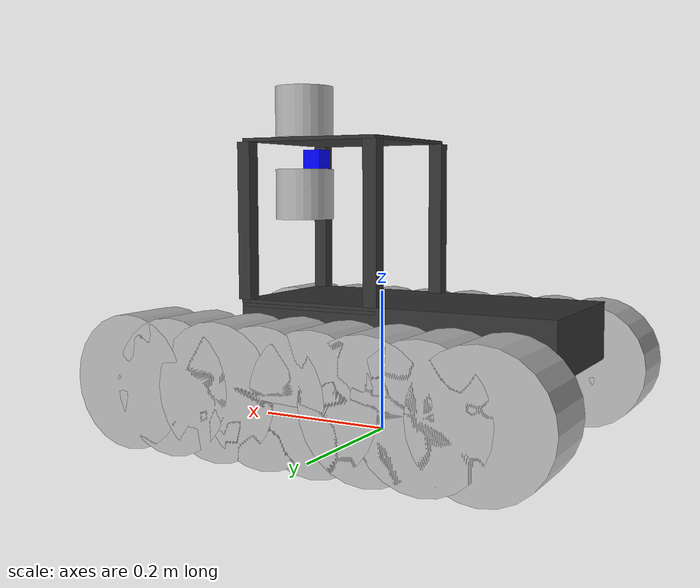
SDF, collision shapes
<?xml version="1.0" ?>

<!-- TODO: add prefix to the sensors and the cmd_vel (in Raposa) -->
<sdf version="1.6">
  <plugin
      filename="ignition-gazebo-sensors-system"
      name="ignition::gazebo::systems::Sensors">
      <render_engine>ogre2</render_engine>
    </plugin>
  <model name="nix">
    <pose frame=''>0 0 0 0 0 0</pose>

    <include>
      <uri>raposaNG</uri>
      <pose frame=''> 0 0 0.07 0 0 0 </pose>
    </include>

    <include>
      <uri>nix_tower</uri>
      <name>nix_tower</name>
      <pose frame=''> 0.06 0 0.18 0 0 0 </pose>
    </include>
    <joint name="tower_joint" type="revolute">
      <child>nix_tower::base_link</child>
      <parent>raposaNG::base_link</parent>

      <pose>0.06 0 0.18 0 0 0</pose>

      <axis>
        <limit>
          <lower>-0.02</lower>
          <upper>0.02</upper>
        </limit>
        <xyz>0 0 1</xyz>
        <dynamics>
          <spring_reference>0</spring_reference>
          <spring_stiffness>0</spring_stiffness>
          <damping>0.3</damping>
          <friction>2</friction>
        </dynamics>
      </axis>

    </joint>

    <!-- Ouster Configuration-->
    <include>
      <uri>velodyne_hdl32</uri>
      <pose frame=''> 0.13 0 0.42 0 0 0 </pose>
    </include>
    <joint name="velodyne_joint" type="fixed">
      <child>velodyne::top</child>
      <parent>nix_tower::plate</parent>

      <pose>0.15 0 0.42 0 0 0</pose>
    </joint>

    <!-- Radar Config -->
    <include>
      <uri>hrw_radar</uri>
      <pose frame=''> 0.13 0 0.3 0 0 0 </pose>
    </include>
    <joint name="radar_joint" type="fixed">
      <child>radar::top</child>
      <parent>nix_tower::plate</parent>

      <pose>0.15 0 0.3 0 0 0</pose>
    </joint>

    <include>
      <uri>wide_lens_camera</uri>
      <pose frame=''> 0.16 -0.08 0.39 0 0 0 </pose>
    </include>
    <joint name="wide_lens_camera_joint" type="fixed">
      <child>wide_lens_camera::base_link</child>
      <parent>nix_tower::plate</parent>
      <pose>0.16 -0.08 0.39 0 0 0</pose>
    </joint>

  </model>
</sdf>

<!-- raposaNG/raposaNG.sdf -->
<sdf version="1.6">
<odom_publish_frequency>1</odom_publish_frequency>
    <topic>cmd_vel</topic>
    <model name="raposaNG">
      <pose frame=''>0 2 0.071917 0 0 0</pose>
      <link name='base_link'>
          <pose frame=''>0 0 0 0 -0 0</pose>
          <inertial>
              <pose frame=''>-0.062 0 0.03 1.5708 -0 0</pose>
              <mass>13.14</mass>
              <inertia>
                  <ixx>0.10019</ixx>
                  <ixy>0</ixy>
                  <ixz>0</ixz>
                  <iyy>0.345043</iyy>
                  <iyz>0</iyz>
                  <izz>0.302044</izz>
              </inertia>
          </inertial>
          <collision name='base_link_collision'>
              <pose frame=''>-0.062 0 0.08 0 -0 0</pose>
              <geometry>
                  <box>
                      <size>0.46017 0.2093 0.08</size>
                  </box>
              </geometry>
          </collision>
          <visual name='base_link_visual'>
              <pose frame=''>-0.062 0 0.08 0 -0 0</pose>
              <geometry>
                  <box>
                      <size>0.46017 0.29093 0.08</size>
                  </box>
              </geometry>
              <material>
                <ambient>0.2 0.2 0.2 1</ambient>
                <diffuse>0.2 0.2 0.2 1</diffuse>
                <specular>0.1 0.1 0.1 1</specular>
              </material>
          </visual>
          <self_collide>0</self_collide>
          <gravity>1</gravity>
          <kinematic>0</kinematic>

          <sensor name="imu_sensor" type="imu">
            <always_on>1</always_on>
            <update_rate>1000</update_rate>
          </sensor>
      </link>

      <link name='left_track'>
          <pose frame=''>0 0.1985 0 0 -0 0</pose>
          <inertial>
              <mass>2.06</mass>
              <inertia>
                  <ixx>0.002731</ixx>
                  <ixy>0</ixy>
                  <ixz>0</ixz>
                  <iyy>0.032554</iyy>
                  <iyz>0</iyz>
                  <izz>0.031391</izz>
              </inertia>
          </inertial>
          <collision name='left_track_collision'>
              <pose frame=''>0 0 0.01855 1.5707963267948966  -0 1.5707963267948966</pose>
              <geometry>
                  <box>
                      <size>0.009728 0.018094 0.05</size>
                  </box>
              </geometry>
          </collision>
      </link>
      <joint name='left_track_j' type='fixed'>
          <child>left_track</child>
          <parent>base_link</parent>
      </joint>
      <link name='left_track_wheel1'>
          <pose frame=''>0.25 0.1985 0.01855 0 -0 0</pose>
          <inertial>
              <mass>0.5</mass>
              <inertia>
                  <ixx>0.001</ixx>
                  <ixy>0</ixy>
                  <ixz>0</ixz>
                  <iyy>0.001</iyy>
                  <iyz>0</iyz>
                  <izz>0.001</izz>
              </inertia>
          </inertial>
          <collision name='left_track_wheel1_collision'>
              <pose frame=''>0 0 0 1.5707963267948966 -0 0</pose>
              <geometry>
                  <cylinder>
                      <length>0.09728</length>
                      <radius>0.09047</radius>
                  </cylinder>
              </geometry>
              <surface>
                  <friction>
                      <ode>
                          <mu>0.5</mu>
                          <mu2>3.19858</mu2>
                          <fdir1>0 0 1</fdir1>
                          <slip1>0</slip1>
                          <slip2>0</slip2>
                      </ode>
                  </friction>
              </surface>
          </collision>
          <visual name='left_track_wheel1_visual'>
              <pose frame=''>0 0 0 1.5707963267948966 -0 0</pose>
              <geometry>
                  <cylinder>
                      <length>0.09728</length>
                      <radius>0.09047</radius>
                  </cylinder>
              </geometry>
          </visual>
      </link>
      <joint name='left_track_wheel1_j' type='revolute'>
          <child>left_track_wheel1</child>
          <parent>left_track</parent>
          <axis>
              <xyz>0 1 0</xyz>
              <limit>
                  <lower>-1e+16</lower>
                  <upper>1e+16</upper>
              </limit>
          </axis>
      </joint>
      <link name='left_track_wheel2'>
          <pose frame=''>0.1786 0.1985 0.01855 0 -0 0</pose>
          <inertial>
              <mass>0.5</mass>
              <inertia>
                  <ixx>0.001</ixx>
                  <ixy>0</ixy>
                  <ixz>0</ixz>
                  <iyy>0.001</iyy>
                  <iyz>0</iyz>
                  <izz>0.001</izz>
              </inertia>
          </inertial>
          <collision name='left_track_wheel2_collision'>
              <pose frame=''>0 0 0 1.5707963267948966 -0 0</pose>
              <geometry>
                  <cylinder>
                      <length>0.09728</length>
                      <radius>0.09047</radius>
                  </cylinder>
              </geometry>
              <surface>
                  <friction>
                      <ode>
                          <mu>0.5</mu>
                          <mu2>3.19858</mu2>
                          <fdir1>0 0 1</fdir1>
                          <slip1>0</slip1>
                          <slip2>0</slip2>
                      </ode>
                  </friction>
              </surface>
          </collision>
          <visual name='left_track_wheel2_visual'>
              <pose frame=''>0 0 0 1.5707963267948966 -0 0</pose>
              <geometry>
                  <cylinder>
                      <length>0.09728</length>
                      <radius>0.09047</radius>
                  </cylinder>
              </geometry>
          </visual>
      </link>
      <joint name='left_track_wheel2_j' type='revolute'>
          <child>left_track_wheel2</child>
          <parent>left_track</parent>
          <axis>
              <xyz>0 1 0</xyz>
              <limit>
                  <lower>-1e+16</lower>
                  <upper>1e+16</upper>
              </limit>
          </axis>
      </joint>
      <link name='left_track_wheel3'>
          <pose frame=''>0.1072 0.1985 0.01855 0 -0 0</pose>
          <inertial>
              <mass>0.5</mass>
              <inertia>
                  <ixx>0.001</ixx>
                  <ixy>0</ixy>
                  <ixz>0</ixz>
                  <iyy>0.001</iyy>
                  <iyz>0</iyz>
                  <izz>0.001</izz>
              </inertia>
          </inertial>
          <collision name='left_track_wheel3_collision'>
              <pose frame=''>0 0 0 1.5707963267948966 -0 0</pose>
              <geometry>
                  <cylinder>
                      <length>0.09728</length>
                      <radius>0.09047</radius>
                  </cylinder>
              </geometry>
              <surface>
                  <friction>
                      <ode>
                          <mu>0.5</mu>
                          <mu2>3.19858</mu2>
                          <fdir1>0 0 1</fdir1>
                          <slip1>0</slip1>
                          <slip2>0</slip2>
                      </ode>
                  </friction>
              </surface>
          </collision>
          <visual name='left_track_wheel3_visual'>
              <pose frame=''>0 0 0 1.5707963267948966 -0 0</pose>
              <geometry>
                  <cylinder>
                      <length>0.09728</length>
                      <radius>0.09047</radius>
                  </cylinder>
              </geometry>
          </visual>
      </link>
      <joint name='left_track_wheel3_j' type='revolute'>
          <child>left_track_wheel3</child>
          <parent>left_track</parent>
          <axis>
              <xyz>0 1 0</xyz>
              <limit>
                  <lower>-1e+16</lower>
                  <upper>1e+16</upper>
              </limit>
          </axis>
      </joint>
      <link name='left_track_wheel4'>
          <pose frame=''>-0.25 0.1985 0.01855 0 -0 0</pose>
          <inertial>
              <mass>0.5</mass>
              <inertia>
                  <ixx>0.001</ixx>
                  <ixy>0</ixy>
                  <ixz>0</ixz>
                  <iyy>0.001</iyy>
                  <iyz>0</iyz>
                  <izz>0.001</izz>
              </inertia>
          </inertial>
          <collision name='left_track_wheel4_collision'>
              <pose frame=''>0 0 0 1.5707963267948966 -0 0</pose>
              <geometry>
                  <cylinder>
                      <length>0.09728</length>
                      <radius>0.09047</radius>
                  </cylinder>
              </geometry>
              <surface>
                  <friction>
                      <ode>
                          <mu>0.5</mu>
                          <mu2>3.19858</mu2>
                          <fdir1>0 0 1</fdir1>
                          <slip1>0</slip1>
                          <slip2>0</slip2>
                      </ode>
                  </friction>
              </surface>
          </collision>
          <visual name='left_track_wheel4_visual'>
              <pose frame=''>0 0 0 1.5707963267948966 -0 0</pose>
              <geometry>
                  <cylinder>
                      <length>0.09728</length>
                      <radius>0.09047</radius>
                  </cylinder>
              </geometry>
          </visual>
      </link>
      <joint name='left_track_wheel4_j' type='revolute'>
          <child>left_track_wheel4</child>
          <parent>left_track</parent>
          <axis>
              <xyz>0 1 0</xyz>
              <limit>
                  <lower>-1e+16</lower>
                  <upper>1e+16</upper>
              </limit>
          </axis>
      </joint>
      <link name='left_track_wheel5'>
          <pose frame=''>-0.0358 0.1985 0.01855 0 -0 0</pose>
          <inertial>
              <mass>0.5</mass>
              <inertia>
                  <ixx>0.001</ixx>
                  <ixy>0</ixy>
                  <ixz>0</ixz>
                  <iyy>0.001</iyy>
                  <iyz>0</iyz>
                  <izz>0.001</izz>
              </inertia>
          </inertial>
          <collision name='left_track_wheel5_collision'>
              <pose frame=''>0 0 0 1.5707963267948966 -0 0</pose>
              <geometry>
                  <cylinder>
                      <length>0.09728</length>
                      <radius>0.09047</radius>
                  </cylinder>
              </geometry>
              <surface>
                  <friction>
                      <ode>
                          <mu>0.5</mu>
                          <mu2>3.19858</mu2>
                          <fdir1>0 0 1</fdir1>
                          <slip1>0</slip1>
                          <slip2>0</slip2>
                      </ode>
                  </friction>
              </surface>
          </collision>
          <visual name='left_track_wheel5_visual'>
              <pose frame=''>0 0 0 1.5707963267948966 -0 0</pose>
              <geometry>
                  <cylinder>
                      <length>0.09728</length>
                      <radius>0.09047</radius>
                  </cylinder>
              </geometry>
          </visual>
      </link>
      <joint name='left_track_wheel5_j' type='revolute'>
          <child>left_track_wheel5</child>
          <parent>left_track</parent>
          <axis>
              <xyz>0 1 0</xyz>
              <limit>
                  <lower>-1e+16</lower>
                  <upper>1e+16</upper>
              </limit>
          </axis>
      </joint>
      <link name='left_track_wheel6'>
          <pose frame=''>-0.1072 0.1985 0.01855 0 -0 0</pose>
          <inertial>
              <mass>0.5</mass>
              <inertia>
                  <ixx>0.001</ixx>
                  <ixy>0</ixy>
                  <ixz>0</ixz>
                  <iyy>0.001</iyy>
                  <iyz>0</iyz>
                  <izz>0.001</izz>
              </inertia>
          </inertial>
          <collision name='left_track_wheel6_collision'>
              <pose frame=''>0 0 0 1.5707963267948966 -0 0</pose>
              <geometry>
                  <cylinder>
                      <length>0.09728</length>
                      <radius>0.09047</radius>
                  </cylinder>
              </geometry>
              <surface>
                  <friction>
                      <ode>
                          <mu>0.5</mu>
                          <mu2>3.19858</mu2>
                          <fdir1>0 0 1</fdir1>
                          <slip1>0</slip1>
                          <slip2>0</slip2>
                      </ode>
                  </friction>
              </surface>
          </collision>
          <visual name='left_track_wheel6_visual'>
              <pose frame=''>0 0 0 1.5707963267948966 -0 0</pose>
              <geometry>
                  <cylinder>
                      <length>0.09728</length>
                      <radius>0.09047</radius>
                  </cylinder>
              </geometry>
          </visual>
          <gravity>1</gravity>
          <velocity_decay/>
          <kinematic>0</kinematic>
      </link>
      <joint name='left_track_wheel6_j' type='revolute'>
          <child>left_track_wheel6</child>
          <parent>left_track</parent>
          <axis>
              <xyz>0 1 0</xyz>
              <limit>
                  <lower>-1e+16</lower>
                  <upper>1e+16</upper>
              </limit>
          </axis>
      </joint>
      <link name='left_track_wheel7'>
          <pose frame=''>-0.1786 0.1985 0.01855 0 -0 0</pose>
          <inertial>
              <mass>0.5</mass>
              <inertia>
                  <ixx>0.001</ixx>
                  <ixy>0</ixy>
                  <ixz>0</ixz>
                  <iyy>0.001</iyy>
                  <iyz>0</iyz>
                  <izz>0.001</izz>
              </inertia>
          </inertial>
          <collision name='left_track_wheel7_collision'>
              <pose frame=''>0 0 0 1.5707963267948966 -0 0</pose>
              <geometry>
                  <cylinder>
                      <length>0.09728</length>
                      <radius>0.09047</radius>
                  </cylinder>
              </geometry>
              <surface>
                  <friction>
                      <ode>
                          <mu>0.5</mu>
                          <mu2>3.19858</mu2>
                          <fdir1>0 0 1</fdir1>
                          <slip1>0</slip1>
                          <slip2>0</slip2>
                      </ode>
                  </friction>
              </surface>
          </collision>
          <visual name='left_track_wheel7_visual'>
              <pose frame=''>0 0 0 1.5707963267948966 -0 0</pose>
              <geometry>
                  <cylinder>
                      <length>0.09728</length>
                      <radius>0.09047</radius>
                  </cylinder>
              </geometry>
          </visual>
      </link>
      <joint name='left_track_wheel7_j' type='revolute'>
          <child>left_track_wheel7</child>
          <parent>left_track</parent>
          <axis>
              <xyz>0 1 0</xyz>
              <limit>
                  <lower>-1e+16</lower>
                  <upper>1e+16</upper>
              </limit>
          </axis>
      </joint>
      <link name='left_track_wheel8'>
          <pose frame=''>0.0358 0.1985 0.01855 0 -0 0</pose>
          <inertial>
              <mass>0.5</mass>
              <inertia>
                  <ixx>0.001</ixx>
                  <ixy>0</ixy>
                  <ixz>0</ixz>
                  <iyy>0.001</iyy>
                  <iyz>0</iyz>
                  <izz>0.001</izz>
              </inertia>
          </inertial>
          <collision name='left_track_wheel8_collision'>
              <pose frame=''>0 0 0 1.5707963267948966 -0 0</pose>
              <geometry>
                  <cylinder>
                      <length>0.09728</length>
                      <radius>0.09047</radius>
                  </cylinder>
              </geometry>
              <surface>
                  <friction>
                      <ode>
                          <mu>0.5</mu>
                          <mu2>3.19858</mu2>
                          <fdir1>0 0 1</fdir1>
                          <slip1>0</slip1>
                          <slip2>0</slip2>
                      </ode>
                  </friction>
              </surface>
          </collision>
          <visual name='left_track_wheel8_visual'>
              <pose frame=''>0 0 0 1.5707963267948966 -0 0</pose>
              <geometry>
                  <cylinder>
                      <length>0.09728</length>
                      <radius>0.09047</radius>
                  </cylinder>
              </geometry>
          </visual>
      </link>
      <joint name='left_track_wheel8_j' type='revolute'>
          <child>left_track_wheel8</child>
          <parent>left_track</parent>
          <axis>
              <xyz>0 1 0</xyz>
              <limit>
                  <lower>-1e+16</lower>
                  <upper>1e+16</upper>
              </limit>
          </axis>
      </joint>

      <link name='right_track'>
          <pose frame=''>0 -0.1985 0 0 -0 0</pose>
          <inertial>
              <mass>2.06</mass>
              <inertia>
                  <ixx>0.002731</ixx>
                  <ixy>0</ixy>
                  <ixz>0</ixz>
                  <iyy>0.032554</iyy>
                  <iyz>0</iyz>
                  <izz>0.031391</izz>
              </inertia>
          </inertial>
          <collision name='right_track_collision'>
              <pose frame=''>0 0 0.01855 1.5707963267948966  -0 1.5707963267948966</pose>
              <geometry>
                  <box>
                      <size>0.009728 0.018094 0.05</size>
                  </box>
              </geometry>
          </collision>
      </link>
      <joint name='right_track_j' type='fixed'>
          <child>right_track</child>
          <parent>base_link</parent>
      </joint>

      <link name='right_track_wheel1'>
          <pose frame=''>0.25 -0.1985 0.01855 0 -0 0</pose>
          <inertial>
              <mass>0.5</mass>
              <inertia>
                  <ixx>0.001</ixx>
                  <ixy>0</ixy>
                  <ixz>0</ixz>
                  <iyy>0.001</iyy>
                  <iyz>0</iyz>
                  <izz>0.001</izz>
              </inertia>
          </inertial>
          <collision name='right_track_wheel1_collision'>
              <pose frame=''>0 0 0 1.5707963267948966 -0 0</pose>
              <geometry>
                  <cylinder>
                      <length>0.09728</length>
                      <radius>0.09047</radius>
                  </cylinder>
              </geometry>
              <surface>
                  <friction>
                      <ode>
                          <mu>0.5</mu>
                          <mu2>3.19858</mu2>
                          <fdir1>0 0 1</fdir1>
                          <slip1>0</slip1>
                          <slip2>0</slip2>
                      </ode>
                  </friction>
              </surface>
          </collision>
          <visual name='right_track_wheel1_visual'>
              <pose frame=''>0 0 0 1.5707963267948966 -0 0</pose>
              <geometry>
                  <cylinder>
                      <length>0.09728</length>
                      <radius>0.09047</radius>
                  </cylinder>
              </geometry>
          </visual>
      </link>
      <joint name='right_track_wheel1_j' type='revolute'>
          <child>right_track_wheel1</child>
          <parent>right_track</parent>
          <axis>
              <xyz>0 1 0</xyz>
              <limit>
                  <lower>-1e+16</lower>
                  <upper>1e+16</upper>
              </limit>
          </axis>
      </joint>
      <link name='right_track_wheel2'>
          <pose frame=''>0.1786 -0.1985 0.01855 0 -0 0</pose>
          <inertial>
              <mass>0.5</mass>
              <inertia>
                  <ixx>0.001</ixx>
                  <ixy>0</ixy>
                  <ixz>0</ixz>
                  <iyy>0.001</iyy>
                  <iyz>0</iyz>
                  <izz>0.001</izz>
              </inertia>
          </inertial>
          <collision name='right_track_wheel2_collision'>
              <pose frame=''>0 0 0 1.5707963267948966 -0 0</pose>
              <geometry>
                  <cylinder>
                      <length>0.09728</length>
                      <radius>0.09047</radius>
                  </cylinder>
              </geometry>
              <surface>
                  <friction>
                      <ode>
                          <mu>0.5</mu>
                          <mu2>3.19858</mu2>
                          <fdir1>0 0 1</fdir1>
                          <slip1>0</slip1>
                          <slip2>0</slip2>
                      </ode>
                  </friction>
              </surface>
          </collision>
          <visual name='right_track_wheel2_visual'>
              <pose frame=''>0 0 0 1.5707963267948966 -0 0</pose>
              <geometry>
                  <cylinder>
                      <length>0.09728</length>
                      <radius>0.09047</radius>
                  </cylinder>
              </geometry>
          </visual>
      </link>
      <joint name='right_track_wheel2_j' type='revolute'>
          <child>right_track_wheel2</child>
          <parent>right_track</parent>
          <axis>
              <xyz>0 1 0</xyz>
              <limit>
                  <lower>-1e+16</lower>
                  <upper>1e+16</upper>
              </limit>
          </axis>
      </joint>
      <link name='right_track_wheel3'>
          <pose frame=''>0.1072 -0.1985 0.01855 0 -0 0</pose>
          <inertial>
              <mass>0.5</mass>
              <inertia>
                  <ixx>0.001</ixx>
                  <ixy>0</ixy>
                  <ixz>0</ixz>
                  <iyy>0.001</iyy>
                  <iyz>0</iyz>
                  <izz>0.001</izz>
              </inertia>
          </inertial>
          <collision name='right_track_wheel3_collision'>
              <pose frame=''>0 0 0 1.5707963267948966 -0 0</pose>
              <geometry>
                  <cylinder>
                      <length>0.09728</length>
                      <radius>0.09047</radius>
                  </cylinder>
              </geometry>
              <surface>
                  <friction>
                      <ode>
                          <mu>0.5</mu>
                          <mu2>3.19858</mu2>
                          <fdir1>0 0 1</fdir1>
                          <slip1>0</slip1>
                          <slip2>0</slip2>
                      </ode>
                  </friction>
              </surface>
          </collision>
          <visual name='right_track_wheel3_visual'>
              <pose frame=''>0 0 0 1.5707963267948966 -0 0</pose>
              <geometry>
                  <cylinder>
                      <length>0.09728</length>
                      <radius>0.09047</radius>
                  </cylinder>
              </geometry>
          </visual>
      </link>
      <joint name='right_track_wheel3_j' type='revolute'>
          <child>right_track_wheel3</child>
          <parent>right_track</parent>
          <axis>
              <xyz>0 1 0</xyz>
              <limit>
                  <lower>-1e+16</lower>
                  <upper>1e+16</upper>
              </limit>
          </axis>
      </joint>
      <link name='right_track_wheel4'>
          <pose frame=''>-0.25 -0.1985 0.01855 0 -0 0</pose>
          <inertial>
              <mass>0.5</mass>
              <inertia>
                  <ixx>0.001</ixx>
                  <ixy>0</ixy>
                  <ixz>0</ixz>
                  <iyy>0.001</iyy>
                  <iyz>0</iyz>
                  <izz>0.001</izz>
              </inertia>
          </inertial>
          <collision name='right_track_wheel4_collision'>
              <pose frame=''>0 0 0 1.5707963267948966 -0 0</pose>
              <geometry>
                  <cylinder>
                      <length>0.09728</length>
                      <radius>0.09047</radius>
                  </cylinder>
              </geometry>
              <surface>
                  <friction>
                      <ode>
                          <mu>0.5</mu>
                          <mu2>3.19858</mu2>
                          <fdir1>0 0 1</fdir1>
                          <slip1>0</slip1>
                          <slip2>0</slip2>
                      </ode>
                  </friction>
              </surface>
          </collision>
          <visual name='right_track_wheel4_visual'>
              <pose frame=''>0 0 0 1.5707963267948966 -0 0</pose>
              <geometry>
                  <cylinder>
                      <length>0.09728</length>
                      <radius>0.09047</radius>
                  </cylinder>
              </geometry>
          </visual>
      </link>
      <joint name='right_track_wheel4_j' type='revolute'>
          <child>right_track_wheel4</child>
          <parent>right_track</parent>
          <axis>
              <xyz>0 1 0</xyz>
              <limit>
                  <lower>-1e+16</lower>
                  <upper>1e+16</upper>
              </limit>
          </axis>
      </joint>
      <link name='right_track_wheel5'>
          <pose frame=''>-0.0358 -0.1985 0.01855 0 -0 0</pose>
          <inertial>
              <mass>0.5</mass>
              <inertia>
                  <ixx>0.001</ixx>
                  <ixy>0</ixy>
                  <ixz>0</ixz>
                  <iyy>0.001</iyy>
                  <iyz>0</iyz>
                  <izz>0.001</izz>
              </inertia>
          </inertial>
          <collision name='right_track_wheel5_collision'>
              <pose frame=''>0 0 0 1.5707963267948966 -0 0</pose>
              <geometry>
                  <cylinder>
                      <length>0.09728</length>
                      <radius>0.09047</radius>
                  </cylinder>
              </geometry>
              <surface>
                  <friction>
                      <ode>
                          <mu>0.5</mu>
                          <mu2>3.19858</mu2>
                          <fdir1>0 0 1</fdir1>
                          <slip1>0</slip1>
                          <slip2>0</slip2>
                      </ode>
                  </friction>
              </surface>
          </collision>
          <visual name='right_track_wheel5_visual'>
              <pose frame=''>0 0 0 1.5707963267948966 -0 0</pose>
              <geometry>
                  <cylinder>
                      <length>0.09728</length>
                      <radius>0.09047</radius>
                  </cylinder>
              </geometry>
          </visual>
      </link>
      <joint name='right_track_wheel5_j' type='revolute'>
          <child>right_track_wheel5</child>
          <parent>right_track</parent>
          <axis>
              <xyz>0 1 0</xyz>
              <limit>
                  <lower>-1e+16</lower>
                  <upper>1e+16</upper>
              </limit>
          </axis>
      </joint>
      <link name='right_track_wheel6'>
          <pose frame=''>-0.1072 -0.1985 0.01855 0 -0 0</pose>
          <inertial>
              <mass>0.5</mass>
              <inertia>
                  <ixx>0.001</ixx>
                  <ixy>0</ixy>
                  <ixz>0</ixz>
                  <iyy>0.001</iyy>
                  <iyz>0</iyz>
                  <izz>0.001</izz>
              </inertia>
          </inertial>
          <collision name='right_track_wheel6_collision'>
              <pose frame=''>0 0 0 1.5707963267948966 -0 0</pose>
              <geometry>
                  <cylinder>
                      <length>0.09728</length>
                      <radius>0.09047</radius>
                  </cylinder>
              </geometry>
              <surface>
                  <friction>
                      <ode>
                          <mu>0.5</mu>
                          <mu2>3.19858</mu2>
                          <fdir1>0 0 1</fdir1>
                          <slip1>0</slip1>
                          <slip2>0</slip2>
                      </ode>
                  </friction>
              </surface>
          </collision>
          <visual name='right_track_wheel6_visual'>
              <pose frame=''>0 0 0 1.5707963267948966 -0 0</pose>
              <geometry>
                  <cylinder>
                      <length>0.09728</length>
                      <radius>0.09047</radius>
                  </cylinder>
              </geometry>
          </visual>
      </link>
      <joint name='right_track_wheel6_j' type='revolute'>
          <child>right_track_wheel6</child>
          <parent>right_track</parent>
          <axis>
              <xyz>0 1 0</xyz>
              <limit>
                  <lower>-1e+16</lower>
                  <upper>1e+16</upper>
              </limit>
          </axis>
      </joint>
      <link name='right_track_wheel7'>
          <pose frame=''>-0.1786 -0.1985 0.01855 0 -0 0</pose>
          <inertial>
              <mass>0.5</mass>
              <inertia>
                  <ixx>0.001</ixx>
                  <ixy>0</ixy>
                  <ixz>0</ixz>
                  <iyy>0.001</iyy>
                  <iyz>0</iyz>
                  <izz>0.001</izz>
              </inertia>
          </inertial>
          <collision name='right_track_wheel7_collision'>
              <pose frame=''>0 0 0 1.5707963267948966 -0 0</pose>
              <geometry>
                  <cylinder>
                      <length>0.09728</length>
                      <radius>0.09047</radius>
                  </cylinder>
              </geometry>
              <surface>
                  <friction>
                      <ode>
                          <mu>0.5</mu>
                          <mu2>3.19858</mu2>
                          <fdir1>0 0 1</fdir1>
                          <slip1>0</slip1>
                          <slip2>0</slip2>
                      </ode>
                  </friction>
              </surface>
          </collision>
          <visual name='right_track_wheel7_visual'>
              <pose frame=''>0 0 0 1.5707963267948966 -0 0</pose>
              <geometry>
                  <cylinder>
                      <length>0.09728</length>
                      <radius>0.09047</radius>
                  </cylinder>
              </geometry>
          </visual>
      </link>
      <joint name='right_track_wheel7_j' type='revolute'>
          <child>right_track_wheel7</child>
          <parent>right_track</parent>
          <axis>
              <xyz>0 1 0</xyz>
              <limit>
                  <lower>-1e+16</lower>
                  <upper>1e+16</upper>
              </limit>
          </axis>
      </joint>
      <link name='right_track_wheel8'>
          <pose frame=''>0.0358 -0.1985 0.01855 0 -0 0</pose>
          <inertial>
              <mass>0.5</mass>
              <inertia>
                  <ixx>0.001</ixx>
                  <ixy>0</ixy>
                  <ixz>0</ixz>
                  <iyy>0.001</iyy>
                  <iyz>0</iyz>
                  <izz>0.001</izz>
              </inertia>
          </inertial>
          <collision name='right_track_wheel8_collision'>
              <pose frame=''>0 0 0 1.5707963267948966 -0 0</pose>
              <geometry>
                  <cylinder>
                      <length>0.09728</length>
                      <radius>0.09047</radius>
                  </cylinder>
              </geometry>
              <surface>
                  <friction>
                      <ode>
                          <mu>0.5</mu>
                          <mu2>3.19858</mu2>
                          <fdir1>0 0 1</fdir1>
                          <slip1>0</slip1>
                          <slip2>0</slip2>
                      </ode>
                  </friction>
              </surface>
          </collision>
          <visual name='right_track_wheel8_visual'>
              <pose frame=''>0 0 0 1.5707963267948966 -0 0</pose>
              <geometry>
                  <cylinder>
                      <length>0.09728</length>
                      <radius>0.09047</radius>
                  </cylinder>
              </geometry>
          </visual>
      </link>
      <joint name='right_track_wheel8_j' type='revolute'>
          <child>right_track_wheel8</child>
          <parent>right_track</parent>
          <axis>
              <xyz>0 1 0</xyz>
              <limit>
                  <lower>-1e+16</lower>
                  <upper>1e+16</upper>
              </limit>
          </axis>
      </joint>

      <!-- Track drive -->
      <plugin filename="ignition-gazebo-diff-drive-system"
              name="ignition::gazebo::systems::DiffDrive">
        <left_joint>left_track_wheel1_j</left_joint>
        <right_joint>right_track_wheel1_j</right_joint>
        <left_joint>left_track_wheel2_j</left_joint>
        <right_joint>right_track_wheel2_j</right_joint>
        <left_joint>left_track_wheel3_j</left_joint>
        <right_joint>right_track_wheel3_j</right_joint>
        <left_joint>left_track_wheel4_j</left_joint>
        <right_joint>right_track_wheel4_j</right_joint>
        <left_joint>left_track_wheel5_j</left_joint>
        <right_joint>right_track_wheel5_j</right_joint>
        <left_joint>left_track_wheel6_j</left_joint>
        <right_joint>right_track_wheel6_j</right_joint>
        <left_joint>left_track_wheel7_j</left_joint>
        <right_joint>right_track_wheel7_j</right_joint>
        <left_joint>left_track_wheel8_j</left_joint>
        <right_joint>right_track_wheel8_j</right_joint>
        <wheel_separation>0.55</wheel_separation>
        <wheel_radius>0.09047</wheel_radius>
        <odom_publish_frequency>100</odom_publish_frequency>
        <topic>cmd_vel</topic>
      </plugin>

    </model>

</sdf>

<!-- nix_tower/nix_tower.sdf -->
<sdf version="1.6">
  <model name="nix_tower">
    <pose frame=''>0 0 0 0 0 0</pose>

    <!-- Base -->
    <link name="base_link">
      <pose>0 0 0.0025 0 0 0</pose>
      <inertial>
        <mass>1</mass>
        <inertia>
          <ixx>0.003677</ixx>
          <iyy>0.003677</iyy>
          <izz>0.00735</izz>
          <ixy>0</ixy>
          <ixz>0</ixz>
          <iyz>0</iyz>
        </inertia>
      </inertial>
      <collision name="bl_collision">
        <geometry>
            <box>
              <size>.21 .21 .005</size>
            </box>
        </geometry>
      </collision>
      <visual name="bl_visual">
        <material>

                      <ambient>0.2 0.2 0.2 1</ambient>
                      <diffuse>0.2 0.2 0.2 1</diffuse>
                      <specular>0.1 0.1 0.1 1</specular>

                </material>
        <geometry>
            <box>
              <size>.21 .21 .005</size>
            </box>
        </geometry>
      </visual>
    </link>

    <!-- Tower -->
    <link name="stick_1">
      <pose>-0.1 -0.1 0.12 0 0 0</pose>
      <inertial>
        <mass>0.1</mass>
        <inertia>
          <ixx>0.000407</ixx>
          <iyy>0.000407</iyy>
          <izz>0.000006667</izz>
          <ixy>0</ixy>
          <ixz>0</ixz>
          <iyz>0</iyz>
        </inertia>
      </inertial>
      <collision name="stick_1_collision">
        <geometry>
            <box>
              <size>.02 .02 .22</size>
            </box>
        </geometry>
      </collision>
      <visual name="stick_1_visual">
        <material>

                      <ambient>0.2 0.2 0.2 1</ambient>
                      <diffuse>0.2 0.2 0.2 1</diffuse>
                      <specular>0.1 0.1 0.1 1</specular>

                </material>
        <geometry>
            <box>
              <size>.02 .02 .22</size>
            </box>
        </geometry>
      </visual>
    </link>
    <joint name="stick_1_joint" type="revolute">
      <child>stick_1</child>
      <parent>base_link</parent>

      <pose>-0.1 -0.1 0.12 0 0 0</pose>
       <axis>
        <limit>
          <lower>-0.001</lower>
          <upper>0.001</upper>
        </limit>
        <xyz>1 0 0</xyz>
        <dynamics>
          <spring_reference>0</spring_reference>
          <spring_stiffness>0</spring_stiffness>
          <damping>0.5</damping>
          <friction>4</friction>
        </dynamics>
      </axis>
    </joint>

    <link name="stick_2">
      <pose>0.1 -0.1 0.12 0 0 0</pose>
      <inertial>
        <mass>0.1</mass>
        <inertia>
          <ixx>0.000407</ixx>
          <iyy>0.000407</iyy>
          <izz>0.000006667</izz>
          <ixy>0</ixy>
          <ixz>0</ixz>
          <iyz>0</iyz>
        </inertia>
      </inertial>
      <collision name="stick_2_collision">
        <geometry>
            <box>
              <size>.02 .02 .22</size>
            </box>
        </geometry>
      </collision>
      <visual name="stick_2_visual">
        <material>

                      <ambient>0.2 0.2 0.2 1</ambient>
                      <diffuse>0.2 0.2 0.2 1</diffuse>
                      <specular>0.1 0.1 0.1 1</specular>

                </material>
        <geometry>
            <box>
              <size>.02 .02 .22</size>
            </box>
        </geometry>
      </visual>
    </link>
    <joint name="stick_2_joint" type="revolute">
      <child>stick_2</child>
      <parent>base_link</parent>

      <pose>0.1 -0.1 0.12 0 0 0</pose>
       <axis>
        <limit>
          <lower>-0.001</lower>
          <upper>0.001</upper>
        </limit>
        <xyz>1 0 0</xyz>
        <dynamics>
          <spring_reference>0</spring_reference>
          <spring_stiffness>0</spring_stiffness>
          <damping>0.5</damping>
          <friction>4</friction>
        </dynamics>
      </axis>
    </joint>

    <link name="stick_3">
      <pose>-0.1 0.1 0.12 0 0 0</pose>
      <inertial>
        <mass>0.1</mass>
        <inertia>
          <ixx>0.000407</ixx>
          <iyy>0.000407</iyy>
          <izz>0.000006667</izz>
          <ixy>0</ixy>
          <ixz>0</ixz>
          <iyz>0</iyz>
        </inertia>
      </inertial>
      <collision name="stick_3_collision">
        <geometry>
            <box>
              <size>.02 .02 .22</size>
            </box>
        </geometry>
      </collision>
      <visual name="stick_3_visual">
        <material>

                      <ambient>0.2 0.2 0.2 1</ambient>
                      <diffuse>0.2 0.2 0.2 1</diffuse>
                      <specular>0.1 0.1 0.1 1</specular>

                </material>
        <geometry>
            <box>
              <size>.02 .02 .22</size>
            </box>
        </geometry>
      </visual>
    </link>
    <joint name="stick_3_joint" type="revolute">
      <child>stick_3</child>
      <parent>base_link</parent>

      <pose>-0.1 0.1 0.12 0 0 0</pose>
       <axis>
        <limit>
          <lower>-0.001</lower>
          <upper>0.001</upper>
        </limit>
        <xyz>1 0 0</xyz>
        <dynamics>
          <spring_reference>0</spring_reference>
          <spring_stiffness>0</spring_stiffness>
          <damping>0.5</damping>
          <friction>4</friction>
        </dynamics>
      </axis>
    </joint>

    <link name="stick_4">
      <pose>0.1 0.1 0.12 0 0 0</pose>
      <inertial>
        <mass>0.1</mass>
        <inertia>
          <ixx>0.000407</ixx>
          <iyy>0.000407</iyy>
          <izz>0.000006667</izz>
          <ixy>0</ixy>
          <ixz>0</ixz>
          <iyz>0</iyz>
        </inertia>
      </inertial>
      <collision name="stick_4_collision">
        <geometry>
            <box>
              <size>.02 .02 .22</size>
            </box>
        </geometry>
      </collision>
      <visual name="stick_4_visual">
        <material>

                      <ambient>0.2 0.2 0.2 1</ambient>
                      <diffuse>0.2 0.2 0.2 1</diffuse>
                      <specular>0.1 0.1 0.1 1</specular>

                </material>
        <geometry>
            <box>
              <size>.02 .02 .22</size>
            </box>
        </geometry>
      </visual>
    </link>
    <joint name="stick_4_joint" type="revolute">
      <child>stick_4</child>
      <parent>base_link</parent>

      <pose>-0.1 -0.1 0.12 0 0 0</pose>
       <axis>
        <limit>
          <lower>-0.001</lower>
          <upper>0.001</upper>
        </limit>
        <xyz>1 0 0</xyz>
        <dynamics>
          <spring_reference>0</spring_reference>
          <spring_stiffness>0</spring_stiffness>
          <damping>0.5</damping>
          <friction>4</friction>
        </dynamics>
      </axis>
    </joint>

    <link name="plate">
      <pose>0 0 0.2325 0 0 0</pose>
      <inertial>
        <mass>0.1</mass>
        <inertia>
          <ixx>0.0024</ixx>
          <iyy>0.0024</iyy>
          <izz>0.0048</izz>
          <ixy>0</ixy>
          <ixz>0</ixz>
          <iyz>0</iyz>
        </inertia>
      </inertial>
      <collision name="plate_collision">
        <geometry>
            <box>
              <size>.21 .21 .005</size>
            </box>
        </geometry>
      </collision>
      <visual name="plate_visual">
        <material>

                      <ambient>0.2 0.2 0.2 1</ambient>
                      <diffuse>0.2 0.2 0.2 1</diffuse>
                      <specular>0.1 0.1 0.1 1</specular>

                </material>
        <geometry>
            <box>
              <size>.21 .21 .005</size>
            </box>
        </geometry>
      </visual>
    </link>
    <joint name="plate_joint" type="fixed">
      <child>plate</child>
      <parent>base_link</parent>
      <pose>0 0 0 0 0 0</pose>
    </joint>
  </model>
</sdf>

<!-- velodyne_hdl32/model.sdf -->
<sdf version="1.5">
  <plugin
      filename="ignition-gazebo-sensors-system"
      name="ignition::gazebo::systems::Sensors">
      <render_engine>ogre2</render_engine>
    </plugin>

  <model name="velodyne">

    <link name="top">
      <pose>0 0 0.036785 0 0 0</pose>
      <inertial>
        <mass>0.1</mass>
        <inertia>
          <ixx>0.000090623</ixx>
          <iyy>0.000090623</iyy>
          <izz>0.000091036</izz>
          <ixy>0</ixy>
          <ixz>0</ixz>
          <iyz>0</iyz>
        </inertia>
      </inertial>
      <collision name="top_collision">
        <geometry>
          <cylinder>
            <radius>0.04267</radius>
            <length>0.07357</length>
          </cylinder>
        </geometry>
      </collision>
      <visual name="top_visual">
        <pose>0 0 -0.0376785 0 0 1.5707</pose>
        <geometry>
          <mesh>
            <uri>model://velodyne_hdl32/meshes/velodyne_top.dae</uri>
          </mesh>
        </geometry>
      </visual>
      <sensor name='gpu_lidar' type='gpu_lidar'>
          <topic>lidar</topic>
          <pose>0 0 0.029335 0 0 0</pose>
          <update_rate>10</update_rate>
          <ray>
            <noise>
              <type>gaussian</type>
              <mean>0.0</mean>
              <stddev>0.02</stddev>
            </noise>
            <scan>
                <horizontal>
                <samples>512</samples>
                <resolution>1</resolution>
                <min_angle>-3.14159</min_angle>
                <max_angle>3.14159</max_angle>
              </horizontal>
              <vertical>
                <samples>16</samples>
                <resolution>1</resolution>
                <min_angle>-0.2897247</min_angle>
                <max_angle>0.2897247</max_angle>
              </vertical>
            </scan>
            <range>
              <min>0.08</min>
              <max>10.0</max>
              <resolution>0.01</resolution>
            </range>
          </ray>
          <alwaysOn>1</alwaysOn>
          <visualize>true</visualize>
        </sensor>
    </link>
  </model>
</sdf>

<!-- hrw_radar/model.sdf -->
<sdf version="1.5">
  <plugin
      filename="ignition-gazebo-sensors-system"
      name="ignition::gazebo::systems::Sensors">
      <render_engine>ogre2</render_engine>
    </plugin>

  <model name="radar">

    <link name="top">
      <pose>0 0 0.036785 0 0 0</pose>
      <inertial>
        <mass>0.1</mass>
        <inertia>
          <ixx>0.000090623</ixx>
          <iyy>0.000090623</iyy>
          <izz>0.000091036</izz>
          <ixy>0</ixy>
          <ixz>0</ixz>
          <iyz>0</iyz>
        </inertia>
      </inertial>
      <collision name="top_collision">
        <geometry>
          <cylinder>
            <radius>0.04267</radius>
            <length>0.07357</length>
          </cylinder>
        </geometry>
      </collision>
      <visual name="top_visual">
        <geometry>
          <cylinder>
            <radius>0.04267</radius>
            <length>0.07357</length>
          </cylinder>
        </geometry>
      </visual>
      <sensor name='gpu_radar' type='gpu_radar'>
          <topic>radar</topic>
          <pose>0 0 0.029335 0 0 0</pose>
          <update_rate>10</update_rate>
          <radar>
            <noise>
              <type>gaussian</type>
              <mean>0.0</mean>
              <stddev>0.05</stddev>
            </noise>
            <scan>
                <horizontal>
                <samples>32</samples>
                <resolution>1</resolution>
                <min_angle>-3.14159</min_angle>
                <max_angle>3.14159</max_angle>
              </horizontal>
              <vertical>
                <samples>1</samples>
                <resolution>1</resolution>
                <min_angle>0</min_angle>
                <max_angle>0</max_angle>
              </vertical>
            </scan>
            <range>
              <min>0.2</min>
              <max>20.0</max>
              <resolution>0.04</resolution>
            </range>
          </radar>
          <alwaysOn>1</alwaysOn>
          <visualize>true</visualize>
        </sensor>
    </link>
  </model>
</sdf>

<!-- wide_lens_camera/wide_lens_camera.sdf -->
<sdf version="1.6">
  <model name="wide_lens_camera" >
    <pose>0 0 0 0 0 0</pose>
    <link name="base_link">
      <gravity>true</gravity>
      <inertial>
        <mass>0.01</mass>
        <inertia>
          <ixx>0.0000015</ixx>
          <iyy>0.0000015</iyy>
          <izz>0.0000015</izz>
          <ixy>0</ixy>
          <ixz>0</ixz>
          <iyz>0</iyz>
        </inertia>
      </inertial>
      <collision name="collision">
        <geometry>
          <box>
            <size>0.03 0.03 0.03</size>
          </box>
        </geometry>
      </collision>
      <visual name="visual">
        <pose>0 0 0 0 0 0</pose>
        <geometry>
          <box>
            <size>0.03 0.03 0.03</size>
          </box>

        </geometry>
        <material>
            <ambient>0 0 1 1</ambient>
            <diffuse>0 0 1 1</diffuse>
            <specular>0 0 1 1</specular>
        </material>
        <material>

        </material>
      </visual>
      <sensor name="camera" type="camera">
          <camera>
            <horizontal_fov>2.09</horizontal_fov>
            <image>
              <width>1280</width>
              <height>1024</height>
            </image>
            <clip>
              <near>0.1</near>
              <far>100</far>
            </clip>
          </camera>
          <always_on>1</always_on>
          <update_rate>30</update_rate>
          <visualize>true</visualize>
          <topic>camera</topic>
        </sensor>
        <!-- TODO: put wide lens distorsion-->
    </link>

  </model>
</sdf>
